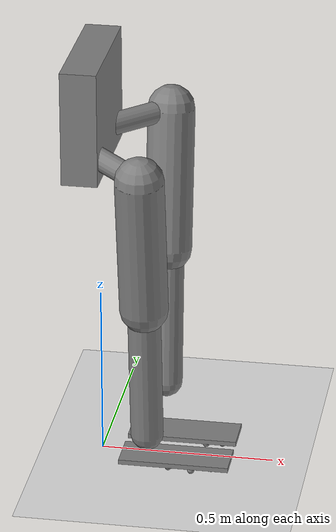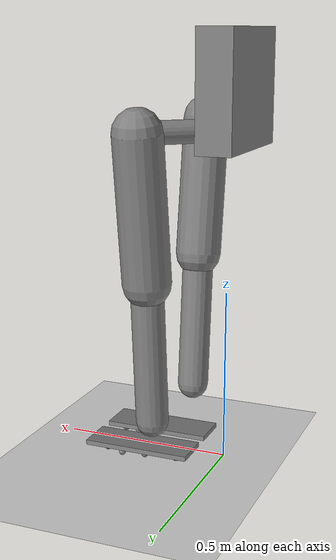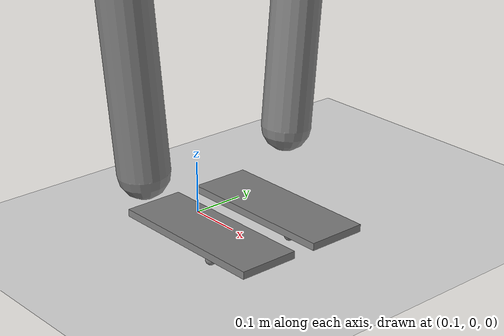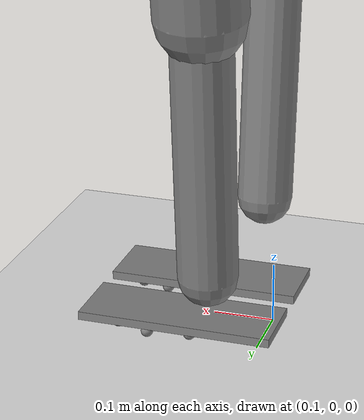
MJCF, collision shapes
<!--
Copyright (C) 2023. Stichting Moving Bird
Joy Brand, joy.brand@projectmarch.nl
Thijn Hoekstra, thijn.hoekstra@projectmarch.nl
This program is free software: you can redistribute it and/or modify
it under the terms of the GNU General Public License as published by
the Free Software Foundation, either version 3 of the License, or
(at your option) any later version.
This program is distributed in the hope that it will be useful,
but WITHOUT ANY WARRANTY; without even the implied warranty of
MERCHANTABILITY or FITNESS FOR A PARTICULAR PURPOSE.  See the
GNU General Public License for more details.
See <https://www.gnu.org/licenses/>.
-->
<mujoco model="exoskeleton">
  <compiler meshdir="obj-files/v1" angle="degree" autolimits="true"/>
  <size nuser_actuator='1' nuser_sensor='1' nuser_geom='1'/>
  <option timestep='0.0005' iterations='50' solver='PGS' gravity='0 0 -9.81'/>

  <asset>
    <texture type="skybox" builtin="gradient" rgb1="0.05 0.05 0.05" rgb2="0.05 0.05 0.05"
             width="512" height="512"/>
    <texture name="body" type="cube" builtin="flat" mark="cross" width="127" height="1278"
             rgb1="0.8 0.6 0.4" rgb2="0.8 0.6 0.4" markrgb="1 1 1"
             random="0.01"/>
    <texture name="grid" type="2d" builtin="checker" mark="edge" markrgb="0 0 0" width="800" height="800"
             rgb1=".9 .9 .9" rgb2=".86 .86 .86"/>
    <texture name="logos" file="obj-files/v1/BackPackLogos.png" type="cube" width="512" height="512"/>

    <material name="grid" texture="grid" texrepeat="1 1" texuniform="false"
              shininess=".2"/>
    <material name="march_cover_inside" rgba=".102 .114 .129 1"
              shininess=".2"/>
    <material name="march_cover_outside" rgba=".102 .114 .129 1"
              shininess=".5"/>
    <material name="march_cover_backpack" rgba=".102 .114 .129 1"
              shininess=".5" texture="logos" texuniform="true"/>
    <material name="march_accent_color" rgba=".898 .294 .114 1"
              shininess=".5"/>
    <material name="march_aluminium" rgba=".827 .827 .827 1"
              shininess=".5"/>
    <material name="march_pilot" rgba=".827 .827 .827 1"/>

    <mesh name="backpack"           file="BackPack.obj"/>
    <mesh name="backpack_accent"    file="BackPackAccent.obj"/>
    <mesh name="backpack_partners"  file="BackPackPartners.obj"/>
    <mesh name="backpack_pilot"     file="BackPackPilot.obj"/>

    <mesh name="L_foot"                 file="FootLeft.obj"/>
    <mesh name="L_foot_pilot"           file="FootLeftPilot.obj"/>
    <mesh name="L_hip"                  file="HipLeft.obj"/>
    <mesh name="L_lower_leg_inside"     file="LowerLegLeftInside.obj"/>
    <mesh name="L_lower_leg_outside"    file="LowerLegLeftOutside.obj"/>
    <mesh name="L_lower_leg_accent"     file="LowerLegLeftAccent.obj"/>
    <mesh name="L_lower_leg_pilot"      file="LowerLegLeftPilot.obj"/>
    <mesh name="L_upper_leg_inside"     file="UpperLegLeftInside.obj"/>
    <mesh name="L_upper_leg_outside"    file="UpperLegLeftOutside.obj"/>
    <mesh name="L_upper_leg_accent"     file="UpperLegLeftAccent.obj"/>
    <mesh name="L_upper_leg_pilot"      file="UpperLegLeftPilot.obj"/>

    <mesh name="R_foot"                 scale="1 -1 1"  file="FootLeft.obj"/>
    <mesh name="R_foot_pilot"           scale="1 -1 1"  file="FootLeftPilot.obj"/>
    <mesh name="R_hip"                  scale="1 -1 1"  file="HipLeft.obj"/>
    <mesh name="R_lower_leg_inside"     scale="1 -1 1"  file="LowerLegLeftInside.obj"/>
    <mesh name="R_lower_leg_outside"    scale="1 -1 1"  file="LowerLegLeftOutside.obj"/>
    <mesh name="R_lower_leg_accent"     scale="1 -1 1"  file="LowerLegLeftAccent.obj"/>
    <mesh name="R_lower_leg_pilot"      scale="1 -1 1"  file="LowerLegLeftPilot.obj"/>
    <mesh name="R_upper_leg_inside"     scale="1 -1 1"  file="UpperLegLeftInside.obj"/>
    <mesh name="R_upper_leg_outside"    scale="1 -1 1"  file="UpperLegLeftOutside.obj"/>
    <mesh name="R_upper_leg_accent"     scale="1 -1 1"  file="UpperLegLeftAccent.obj"/>
    <mesh name="R_upper_leg_pilot"      scale="1 -1 1"  file="UpperLegLeftPilot.obj"/>
  </asset>

  <default>
    <site group="5"/>
    <motor ctrlrange="-1 1" ctrllimited="true"/>
    <geom contype="0" conaffinity="0" condim="1" solref="0.005 1"/>
    <equality solref="0.005 1"/>
    <default class="exoskeleton">
      <geom material="march_aluminium" group="2"/>
    </default>
    <default class="collision">
      <geom contype="1" group="3" type="capsule"/>
      <default class="L_collision">
        <geom contype="2" conaffinity="4"/>
      </default>
      <default class="R_collision">
        <geom contype="4" conaffinity="2"/>
      </default>
    </default>
    <default class="HAA_joint">
      <joint damping="107.692308"
              armature="5.4"
             frictionloss="0" stiffness="0"/>
    </default>
    <default class="ADPF_joint">
      <joint damping="43.658537"
              armature="2.2"
             frictionloss="0" stiffness="0"/>
    </default>
    <default class="rotational_joint">
      <joint damping="63.451777"
              armature="9.98"
             frictionloss="0" stiffness="0"/>
    </default>
  </default>

  <visual>
    <map force="0.1" zfar="30"/>
    <rgba haze="0.93 0.25 0.0 1"/>
    <quality shadowsize="4096"/>
    <global offwidth="800" offheight="800"/>
  </visual>

  <worldbody>
    <geom name="floor" size="0 0 .05" type="plane" material="grid" conaffinity="15" condim="3" />
    <light name="spotlight" mode="targetbodycom" target="backpack"
           diffuse=".3 .3 .3" specular="0.1 0.1 0.1" pos="-2 -20 10" cutoff="40"/>

    <body name="backpack"
          pos="0 0 0.95"
          childclass="exoskeleton">
      <light name="top2" pos="0 0 30" diffuse="0.5 0.5 0.5" mode="trackcom"/>
      <camera name="diag" pos="3 -2.5 1" xyaxes="1 1 0 0 1 2" mode="trackcom"/>
      <camera name="right" pos="0 -3 1" xyaxes="1 0 0 0 1 2" mode="trackcom"/>
      <camera name="custom1" pos="0.039 -4.460 0.0" xyaxes="1.000 0.009 -0.000 -0.000 0.004 1.000" mode="trackcom"/>
      <camera name="custom2" pos="0.0 0.0 0.0" xyaxes="1.000 0.009 -0.000 -0.000 0.004 1.000" mode="trackcom"/>
      <camera name="custom3" pos="0.0 0.0 0.0" xyaxes="0.001 0.001 -0.000 -0.000 0.001 0.001" mode="trackcom"/>

      <site name='imu_backpack' size='0.01' pos="0 0 0"/>
      <inertial pos="0.171 -0.006 0.342" mass="57.096"
                fullinertia="2.931 2.492 1.522 0.023 -0.1 0.025"/>
      <geom type="mesh" mesh="backpack" material="march_cover_outside"/>
      <geom type="mesh" mesh="backpack_accent" material="march_accent_color"/>
      <geom type="mesh" mesh="backpack_partners" material="march_cover_inside"/>
      <geom type="mesh" mesh="backpack_pilot" material="march_pilot"/>
      <geom name="backpack" type="box"
            size="0.051 0.189 0.165"
            pos="-0.02 0 0.13" class="collision"/>

      <site name="imu_torso" size='0.01' pos="0.2 0 0.4"/>

      <!--  LEFT LEG -->
      <body name="L_hip" pos="-0.021 0.08 0.025">
        <inertial pos="0.05 0.109 0.033" mass="1.849"
                  fullinertia="0.012 0.013 0.012 -0.004 0.002 0"/>
        <joint name="L_HAA" axis="-1 0 0" range="-15 10" class="HAA_joint"/>
        <geom type="mesh" mesh="L_hip" material="march_cover_outside"/>
        <geom name="L_hip" fromto="0 0 0 0.182 0.182 0"
              size="0.032" class="L_collision"/>
        <site name="tor_L_HAA" size="0.01" pos="0 0 0"/>

        <body name="L_UL" pos="0.182 0.182 0">
        <inertial pos="0.012 -0.098 -0.151" mass="26.104"
                  fullinertia="0.859 0.733 0.23 0.021 -0.025 0.055"/>
          <joint name="L_HFE" axis="0 -1 0" range="-10 112.5" class="rotational_joint"/>
          <geom type="mesh" mesh="L_upper_leg_outside" material="march_cover_outside"/>
          <geom type="mesh" mesh="L_upper_leg_inside" material="march_cover_inside"/>
          <geom type="mesh" mesh="L_upper_leg_accent"  material="march_accent_color"/>
          <geom type="mesh" mesh="L_upper_leg_pilot"  material="march_pilot"/>
          <geom name="L_UL" fromto="0 0 0 0 -0.06 -0.413"
              size="0.069" class="L_collision"/>
          <site name="tor_L_HFE" size="0.01" pos="0 0 0"/>

          <body name="L_LL" pos="0 -0.06 -0.413">
            <inertial pos="-0.021 -0.079 -0.157" mass="7.061"
                  fullinertia="0.12 0.117 0.034 0.003 -0.008 0.012"/>
            <joint name="L_KFE" axis="0 1 0" range="0 125" class="rotational_joint"/>
            <geom type="mesh" mesh="L_lower_leg_outside" material="march_cover_outside"/>
            <geom type="mesh" mesh="L_lower_leg_inside" material="march_cover_inside"/>
            <geom type="mesh" mesh="L_lower_leg_accent" material="march_accent_color"/>
            <geom type="mesh" mesh="L_lower_leg_pilot"  material="march_pilot"/>
            <geom name="L_LL" fromto="0 0 0 0.0 -0.037 -0.414"
              size="0.047" class="L_collision"/>
            <site name="tor_L_KFE" size="0.01" pos="0 0 0"/>

            <body name="L_foot" pos="0.0 -0.037 -0.414">
              <inertial pos="0.007 -0.054 -0.035" mass="2.964"
                  fullinertia="0.023 0.031 0.019 0.004 0.011 -0.004"/>
              <joint name="L_ADPF" axis="0 -1 0" range="-25 10" class="ADPF_joint"/>
              <geom type="mesh" mesh="L_foot" material="march_aluminium"/>
              <geom type="mesh" mesh="L_foot_pilot"  material="march_pilot"/>
              <site name="tor_L_ADPF" size="0.01" pos="0 0 0"/>

              <!-- The L_foot geometry models a footplate which extends past the pressure pads on the soles-->
              <geom name="L_foot" type="box" size="0.159 0.057 0.007"
                  pos="0.069 -0.086 -0.118"  class="L_collision"
                  friction="0.33"/>

              <!-- Pressure sole  -->
             <body name="pres_L_0" pos="-0.045 -0.072 -0.138">
                <geom name="pres_L_0" type="sphere" pos="0 0 0"
                      size="0.01" class="L_collision"  friction="0.33"/>
                <site name="pres_L_0"/>
              </body>
              <body name="pres_L_1" pos="-0.045 -0.072 -0.138">
                <geom name="pres_L_1" type="sphere" pos="0 0 0"
                      size="0.01" class="L_collision"  friction="0.33"/>
                <site name="pres_L_1"/>
              </body>
              <body name="pres_L_2" pos="0.05 -0.061 -0.138">
                <geom name="pres_L_2" type="sphere" pos="0 0 0"
                      size="0.01" class="L_collision"  friction="0.33"/>
                <site name="pres_L_2"/>
              </body>
              <body name="pres_L_3" pos="0.118 -0.05 -0.138">
                <geom name="pres_L_3" type="sphere" pos="0 0 0"
                      size="0.01" class="L_collision"  friction="0.33"/>
                <site name="pres_L_3"/>
              </body>
              <body name="pres_L_4" pos="0.13 -0.083 -0.138">
                <geom name="pres_L_4" type="sphere" pos="0 0 0"
                      size="0.01" class="L_collision"  friction="0.33"/>
                <site name="pres_L_4"/>
              </body>
              <body name="pres_L_5" pos="0.137 -0.115 -0.138">
                <geom name="pres_L_5" type="sphere" pos="0 0 0"
                      size="0.01" class="L_collision"  friction="0.33"/>
                <site name="pres_L_5"/>
              </body>
              <body name="pres_L_6" pos="0.174 -0.07 -0.138">
                <geom name="pres_L_6" type="sphere" pos="0 0 0"
                      size="0.01" class="L_collision"  friction="0.33"/>
                <site name="pres_L_6"/>
              </body>
              <body name="pres_L_7" pos="0.184 -0.105 -0.138">
                <geom name="pres_L_7" type="sphere" pos="0 0 0"
                      size="0.01" class="L_collision"  friction="0.33"/>
                <site name="pres_L_7"/>
              </body>
            </body>
          </body>
        </body>
      </body>

      <!--  RIGHT LEG -->
      <body name="R_hip" pos="-0.021 -0.08 0.025">
        <inertial pos="0.05 -0.109 0.033" mass="1.849"
                  fullinertia="0.012 0.013 0.012 0.004 0.002 -0"/>
        <joint name="R_HAA" axis="1 0 0" range="-15 10" class="HAA_joint"/>
        <geom type="mesh" mesh="R_hip" material="march_cover_outside"/>
        <geom name="R_hip" fromto="0 0 0 0.182 -0.182 0"
              size="0.032" class="R_collision"/>
        <site name="tor_R_HAA" size="0.01" pos="0 0 0"/>

        <body name="R_UL" pos="0.182 -0.182 0">
          <inertial pos="0.012 0.098 -0.151" mass="26.104"
                  fullinertia="0.859 0.733 0.23 -0.021 -0.025 -0.055"/>
          <joint name="R_HFE" axis="0 -1 0" range="-10 112.5" class="rotational_joint"/>
          <geom type="mesh" mesh="R_upper_leg_outside" material="march_cover_outside"/>
          <geom type="mesh" mesh="R_upper_leg_inside" material="march_cover_inside"/>
          <geom type="mesh" mesh="R_upper_leg_accent" material="march_accent_color"/>
          <geom type="mesh" mesh="R_upper_leg_pilot"  material="march_pilot"/>
          <geom name="R_UL" fromto="0 0 0 0 0.06 -0.413"
              size="0.069" class="R_collision"/>
          <site name="tor_R_HFE" size="0.01" pos="0 0 0"/>

          <body name="R_LL" pos="0 0.06 -0.413">
            <inertial pos="-0.021 0.079 -0.157" mass="7.061"
                  fullinertia="0.12 0.117 0.034 -0.003 -0.008 -0.012"/>
            <joint name="R_KFE" axis="0 1 0" range="0 125" class="rotational_joint"/>
            <geom type="mesh" mesh="R_lower_leg_outside" material="march_cover_outside"/>
            <geom type="mesh" mesh="R_lower_leg_inside" material="march_cover_inside"/>
            <geom type="mesh" mesh="R_lower_leg_accent" material="march_accent_color"/>
            <geom type="mesh" mesh="R_lower_leg_pilot"  material="march_pilot"/>
            <geom name="R_LL" fromto="0 0 0 0.0 0.037 -0.414"
              size="0.047" class="R_collision"/>
            <site name="tor_R_KFE" size="0.01" pos="0 0 0"/>

            <body name="R_foot" pos="0.0 0.037 -0.414">
              <inertial pos="0.007 0.054 -0.035" mass="2.964"
                  fullinertia="0.023 0.031 0.019 -0.004 0.011 0.004"/>
              <joint name="R_ADPF" axis="0 -1 0" range="-25 10" class="ADPF_joint"/>
              <geom type="mesh" mesh="R_foot" material="march_aluminium"/>
              <geom type="mesh" mesh="R_foot_pilot"  material="march_pilot"/>
              <site name="tor_R_ADPF" size="0.01" pos="0 0 0"/>

              <!-- The R_foot geometry models a footplate which extends past the pressure pads on the soles-->
              <geom name="R_foot" type="box" size="0.159 0.057 0.007"
                  pos="0.069 0.086 -0.118"  class="R_collision"
                  friction="0.33"/>

                  <!-- Pressure sole  -->
              <body name="pres_R_0" pos="-0.045 0.072 -0.138">
                <geom name="pres_R_0" type="sphere" pos="0 0 0"
                      size="0.01" class="L_collision"  friction="0.33"/>
                <site name="pres_R_0"/>
              </body>
              <body name="pres_R_1" pos="-0.045 0.072 -0.138">
                <geom name="pres_R_1" type="sphere" pos="0 0 0"
                      size="0.01" class="L_collision"  friction="0.33"/>
                <site name="pres_R_1"/>
              </body>
              <body name="pres_R_2" pos="0.05 0.061 -0.138">
                <geom name="pres_R_2" type="sphere" pos="0 0 0"
                      size="0.01" class="L_collision"  friction="0.33"/>
                <site name="pres_R_2"/>
              </body>
              <body name="pres_R_3" pos="0.118 0.05 -0.138">
                <geom name="pres_R_3" type="sphere" pos="0 0 0"
                      size="0.01" class="L_collision"  friction="0.33"/>
                <site name="pres_R_3"/>
              </body>
              <body name="pres_R_4" pos="0.13 0.083 -0.138">
                <geom name="pres_R_4" type="sphere" pos="0 0 0"
                      size="0.01" class="L_collision"  friction="0.33"/>
                <site name="pres_R_4"/>
              </body>
              <body name="pres_R_5" pos="0.137 0.115 -0.138">
                <geom name="pres_R_5" type="sphere" pos="0 0 0"
                      size="0.01" class="L_collision"  friction="0.33"/>
                <site name="pres_R_5"/>
              </body>
              <body name="pres_R_6" pos="0.174 0.07 -0.138">
                <geom name="pres_R_6" type="sphere" pos="0 0 0"
                      size="0.01" class="L_collision"  friction="0.33"/>
                <site name="pres_R_6"/>
              </body>
              <body name="pres_R_7" pos="0.184 0.105 -0.138">
                <geom name="pres_R_7" type="sphere" pos="0 0 0"
                      size="0.01" class="L_collision"  friction="0.33"/>
                <site name="pres_R_7"/>
              </body>
            </body>
          </body>
        </body>
      </body>

    </body>
  </worldbody>

  <actuator>
    <!-- User parameter is the maximum no-load motor RPM -->
    <motor name="left_ankle"    gear="179"  joint="L_ADPF"  />
    <motor name="left_hip_aa"     gear="280"  joint="L_HAA"  />
    <motor name="left_hip_fe"     gear="250" joint="L_HFE"   />
    <motor name="left_knee"     gear="250"  joint="L_KFE"   />
    <motor name="right_ankle"    gear="179"  joint="R_ADPF"  />
    <motor name="right_hip_aa"     gear="280"  joint="R_HAA"  />
    <motor name="right_hip_fe"     gear="250" joint="R_HFE"   />
    <motor name="right_knee"     gear="250"  joint="R_KFE" />
  </actuator>

  <sensor>
    <!-- User parameter is the number of absolute encoder bits -->
    <!-- encodersoutput position; connected to the actuator -->
    <jointpos name="L_ADPF_pos_output" joint="L_ADPF" user="18" noise="000"/>
    <jointpos name="L_HAA_pos_output" joint="L_HAA" user="18" noise="000"/>
    <jointpos name="L_HFE_pos_output" joint="L_HFE" user="18" noise="000"/>
    <jointpos name="L_KFE_pos_output" joint="L_KFE" user="18" noise="000"/>
    <jointpos name="R_ADPF_output" joint="R_ADPF" user="18" noise="000"/>
    <jointpos name="R_HAA_output" joint="R_HAA" user="18" noise="000"/>
    <jointpos name="R_HFE_output" joint="R_HFE" user="18" noise="000"/>
    <jointpos name="R_KFE_output" joint="R_KFE" user="18" noise="000"/>
    <!-- encodersoutput velocity; connected to the actuator -->
    <jointvel name="L_ADPF_vel_output" joint="L_ADPF" user="18" noise="000"/>
    <jointvel name="L_HAA_vel_output" joint="L_HAA" user="18" noise="000"/>
    <jointvel name="L_HFE_vel_output" joint="L_HFE" user="18" noise="000"/>
    <jointvel name="L_KFE_vel_output" joint="L_KFE" user="18" noise="000"/>
    <jointvel name="R_ADPF_vel_output" joint="R_ADPF" user="18" noise="000"/>
    <jointvel name="R_HAA_vel_output" joint="R_HAA" user="18" noise="000"/>
    <jointvel name="R_HFE_vel_output" joint="R_HFE" user="18" noise="000"/>
    <jointvel name="R_KFE_vel_output" joint="R_KFE" user="18" noise="000"/>
    <!-- torque sensors; connected to the actuator-->

<!--    TODO: This could also be of the type actuatorvel -->
    <torque name="L_ADPF_tor_output" site="tor_L_ADPF" user="13" noise="000"/>
    <torque name="L_HAA_tor_output" site="tor_L_HAA" user="13" noise="000"/>
    <torque name="L_HFE_tor_output" site="tor_L_HFE" user="13" noise="000"/>
    <torque name="L_KFE_tor_output" site="tor_L_KFE" user="13" noise="000"/>
    <torque name="R_ADPF_tor_output" site="tor_R_ADPF" user="13" noise="000"/>
    <torque name="R_HAA_tor_output" site="tor_R_HAA" user="13" noise="000"/>
    <torque name="R_HFE_tor_output" site="tor_R_HFE" user="13" noise="000"/>
    <torque name="R_KFE_tor_output" site="tor_R_KFE" user="13" noise="000"/>

    <!-- pressure soles not finished yet -->
    <force name="L_pressuresole_1_output" site="pres_L_0" noise="000" cutoff="000"/>
    <force name="L_pressuresole_2_output" site="pres_L_1" noise="000" cutoff="000"/>
    <force name="L_pressuresole_3_output" site="pres_L_2" noise="000" cutoff="000"/>
    <force name="L_pressuresole_4_output" site="pres_L_3" noise="000" cutoff="000"/>
    <force name="L_pressuresole_5_output" site="pres_L_4" noise="000" cutoff="000"/>
    <force name="L_pressuresole_6_output" site="pres_L_5" noise="000" cutoff="000"/>
    <force name="L_pressuresole_7_output" site="pres_L_6" noise="000" cutoff="000"/>
    <force name="L_pressuresole_8_output" site="pres_L_7" noise="000" cutoff="000"/>

    <force name="R_pressuresole_1_output" site="pres_R_0" noise="000" cutoff="000"/>
    <force name="R_pressuresole_2_output" site="pres_R_1" noise="000" cutoff="000"/>
    <force name="R_pressuresole_3_output" site="pres_R_2" noise="000" cutoff="000"/>
    <force name="R_pressuresole_4_output" site="pres_R_3" noise="000" cutoff="000"/>
    <force name="R_pressuresole_5_output" site="pres_R_4" noise="000" cutoff="000"/>
    <force name="R_pressuresole_6_output" site="pres_R_5" noise="000" cutoff="000"/>
    <force name="R_pressuresole_7_output" site="pres_R_6" noise="000" cutoff="000"/>
    <force name="R_pressuresole_8_output" site="pres_R_7" noise="000" cutoff="000"/>

    <!-- Noise & cutoff must be determined -->
    <framequat name='backpack_orientation' objtype='site' objname='imu_backpack'/>
    <gyro name='vel_imu_backpack' site='imu_backpack' noise='5e-4' cutoff='34.9'/>
    <accelerometer name='acc_imu_backpack' site='imu_backpack' noise='1e-2' cutoff='157'/>
    <magnetometer name='magnet_imu_backpack' site='imu_backpack'/>

    <framequat name='torso_orientation' objtype='site' objname='imu_torso'/>
    <gyro name='vel_imu_torso' site='imu_torso' noise='5e-4' cutoff='34.9'/>
    <accelerometer name='acc_imu_torso' site='imu_torso' noise='1e-2' cutoff='157'/>
    <magnetometer name='magnet_imu_torso' site='imu_torso'/>

  </sensor>
</mujoco>
